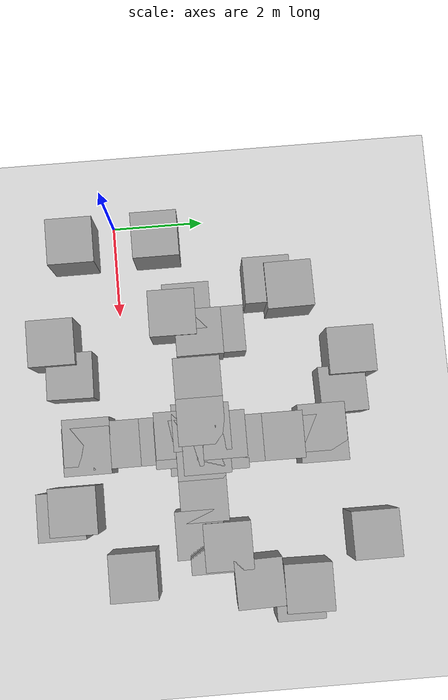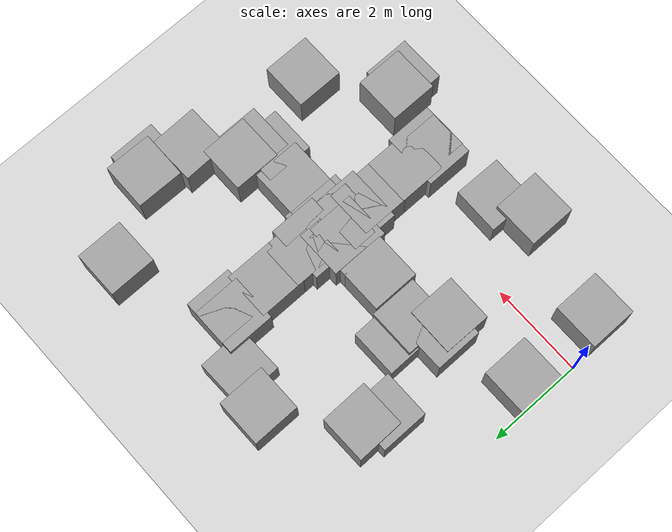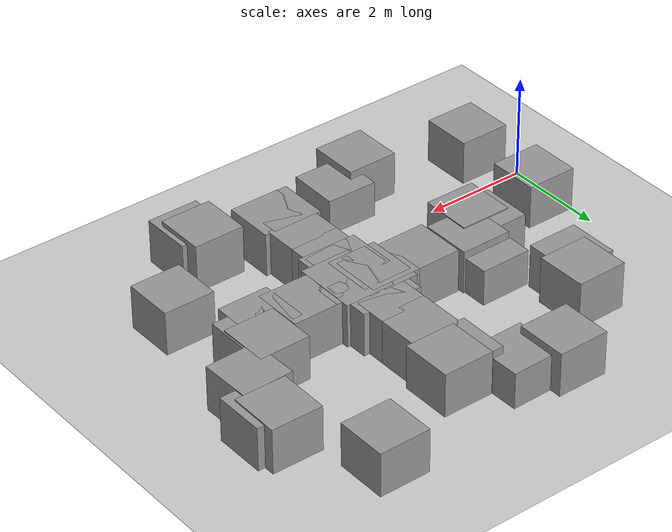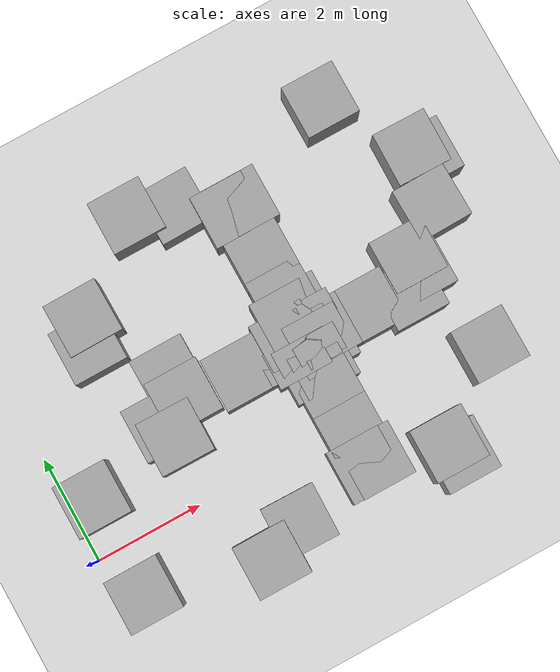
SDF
<sdf version='1.7'>
  <world name='default'>
    <light name='sun' type='directional'>
      <cast_shadows>1</cast_shadows>
      <pose>0 0 10 0 -0 0</pose>
      <diffuse>0.8 0.8 0.8 1</diffuse>
      <specular>0.2 0.2 0.2 1</specular>
      <attenuation>
        <range>1000</range>
        <constant>0.9</constant>
        <linear>0.01</linear>
        <quadratic>0.001</quadratic>
      </attenuation>
      <direction>-0.5 0.1 -0.9</direction>
      <spot>
        <inner_angle>0</inner_angle>
        <outer_angle>0</outer_angle>
        <falloff>0</falloff>
      </spot>
    </light>
    <model name='ground_plane'>
      <static>1</static>
      <link name='link'>
        <collision name='collision'>
          <geometry>
            <plane>
              <normal>0 0 1</normal>
              <size>100 100</size>
            </plane>
          </geometry>
          <surface>
            <contact>
              <collide_bitmask>65535</collide_bitmask>
              <ode/>
            </contact>
            <friction>
              <ode>
                <mu>100</mu>
                <mu2>50</mu2>
              </ode>
              <torsional>
                <ode/>
              </torsional>
            </friction>
            <bounce/>
          </surface>
          <max_contacts>10</max_contacts>
        </collision>
        <visual name='visual'>
          <cast_shadows>0</cast_shadows>
          <geometry>
            <plane>
              <normal>0 0 1</normal>
              <size>100 100</size>
            </plane>
          </geometry>
          <material>
            <script>
              <uri>file://media/materials/scripts/gazebo.material</uri>
              <name>Gazebo/Grey</name>
            </script>
          </material>
        </visual>
        <self_collide>0</self_collide>
        <enable_wind>0</enable_wind>
        <kinematic>0</kinematic>
      </link>
    </model>
    <gravity>0 0 -9.8</gravity>
    <magnetic_field>6e-06 2.3e-05 -4.2e-05</magnetic_field>
    <atmosphere type='adiabatic'/>
    <physics type='ode'>
      <max_step_size>0.001</max_step_size>
      <real_time_factor>1</real_time_factor>
      <real_time_update_rate>1000</real_time_update_rate>
    </physics>
    <scene>
      <ambient>0.4 0.4 0.4 1</ambient>
      <background>0.7 0.7 0.7 1</background>
      <shadows>1</shadows>
    </scene>
    <wind/>
    <spherical_coordinates>
      <surface_model>EARTH_WGS84</surface_model>
      <latitude_deg>0</latitude_deg>
      <longitude_deg>0</longitude_deg>
      <elevation>0</elevation>
      <heading_deg>0</heading_deg>
    </spherical_coordinates>
    <gui fullscreen='0'>
      <camera name='user_camera'>
        <pose>-2.70813 5.70495 19.0216 2e-06 1.5418 -1.5749</pose>
        <view_controller>orbit</view_controller>
        <projection_type>perspective</projection_type>
      </camera>
    </gui>
    <include>
      <uri>model://unit_box</uri>
      <name>sink</name>
      <pose>6.22500 -1.14500 0.44000 0 0 3.14159</pose>
      <scale>1.13 0.56 0.88</scale>
    </include>
<include>
      <uri>model://unit_box</uri>
      <name>sofa</name>
      <pose>2.63500 2.22250 0.20000 0 0 -3.13597</pose>
      <scale>1.78 0.86 0.40</scale>
    </include>
<include>
      <uri>model://unit_box</uri>
      <name>living_table</name>
      <pose>4.10750 4.71000 0.20000 0 0 0.01754</pose>
      <scale>1.14 0.81 0.40</scale>
    </include>
<include>
      <uri>model://unit_box</uri>
      <name>cabinet</name>
      <pose>8.16250 3.59500 0.37500 0 0 -1.58413</pose>
      <scale>0.75 0.28 0.75</scale>
    </include>
<include>
      <uri>model://unit_box</uri>
      <name>shelf</name>
      <pose>1.81250 3.73750 0.41000 0 0 1.58242</pose>
      <scale>0.86 0.36 0.82</scale>
    </include>
<include>
      <uri>model://unit_box</uri>
      <name>dining_table</name>
      <pose>7.99500 2.59000 0.37000 0 0 -1.54975</pose>
      <scale>0.95 0.51 0.74</scale>
    </include>
<include>
      <uri>model://unit_box</uri>
      <name>side_table</name>
      <pose>7.20000 2.00000 0.37000 0 0 0.00000</pose>
      <scale>1.00 0.60 0.74</scale>
    </include>
<include>
      <uri>model://unit_box</uri>
      <name>laundry_table</name>
      <pose>2.21500 1.20250 0.37000 0 0 -0.00909</pose>
      <scale>1.10 0.66 0.74</scale>
    </include>
<include>
      <uri>model://unit_box</uri>
      <name>washing_machine</name>
      <pose>3.37000 -1.08250 0.20000 0 0 3.12493</pose>
      <scale>0.60 0.58 0.40</scale>
    </include>
<include>
      <uri>model://unit_box</uri>
      <name>dining_wall_0_</name>
      <pose>5.12000 2.07476 0.35000 0 0 1.57080</pose>
      <scale>0.67 0.10 0.70</scale>
    </include>
<include>
      <uri>model://unit_box</uri>
      <name>dining_wall_1_</name>
      <pose>5.18481 1.70500 0.35000 0 0 0.00000</pose>
      <scale>0.21 0.10 0.70</scale>
    </include>
<include>
      <uri>model://unit_box</uri>
      <name>dining_wall_2_</name>
      <pose>8.30500 3.38500 0.35000 0 0 1.57080</pose>
      <scale>3.43 0.10 0.70</scale>
    </include>
<include>
      <uri>model://unit_box</uri>
      <name>dining_wall_4_</name>
      <pose>7.19502 5.09000 0.35000 0 0 0.00000</pose>
      <scale>2.25 0.10 0.70</scale>
    </include>
<include>
      <uri>model://unit_box</uri>
      <name>dining_wall_5_</name>
      <pose>5.12000 4.17524 0.35000 0 0 1.57080</pose>
      <scale>1.81 0.10 0.70</scale>
    </include>
<include>
      <uri>model://unit_box</uri>
      <name>dining_wall_6_</name>
      <pose>7.23019 1.70500 0.35000 0 0 0.00000</pose>
      <scale>2.12 0.10 0.70</scale>
    </include>
<include>
      <uri>model://unit_box</uri>
      <name>living_wall_0_</name>
      <pose>4.89000 2.05963 0.35000 0 0 1.57080</pose>
      <scale>0.70 0.10 0.70</scale>
    </include>
<include>
      <uri>model://unit_box</uri>
      <name>living_wall_1_</name>
      <pose>2.66986 1.74000 0.35000 0 0 0.00000</pose>
      <scale>2.06 0.10 0.70</scale>
    </include>
<include>
      <uri>model://unit_box</uri>
      <name>living_wall_2_</name>
      <pose>1.65500 3.28500 0.35000 0 0 1.57080</pose>
      <scale>3.03 0.10 0.70</scale>
    </include>
<include>
      <uri>model://unit_box</uri>
      <name>living_wall_3_</name>
      <pose>3.30500 4.93500 0.35000 0 0 0.00000</pose>
      <scale>3.28 0.10 0.70</scale>
    </include>
<include>
      <uri>model://unit_box</uri>
      <name>living_wall_4_</name>
      <pose>4.89000 4.17037 0.35000 0 0 1.57080</pose>
      <scale>1.80 0.10 0.70</scale>
    </include>
<include>
      <uri>model://unit_box</uri>
      <name>living_wall_5_</name>
      <pose>4.70514 1.74000 0.35000 0 0 0.00000</pose>
      <scale>0.27 0.10 0.70</scale>
    </include>
<include>
      <uri>model://unit_box</uri>
      <name>kitchen_wall_0_</name>
      <pose>5.00500 -0.79052 0.35000 0 0 1.57080</pose>
      <scale>1.24 0.10 0.70</scale>
    </include>
<include>
      <uri>model://unit_box</uri>
      <name>kitchen_wall_1_</name>
      <pose>6.32000 -1.41000 0.35000 0 0 0.00000</pose>
      <scale>2.74 0.10 0.70</scale>
    </include>
<include>
      <uri>model://unit_box</uri>
      <name>kitchen_wall_2_</name>
      <pose>7.67000 -0.01000 0.35000 0 0 1.57080</pose>
      <scale>2.80 0.10 0.70</scale>
    </include>
<include>
      <uri>model://unit_box</uri>
      <name>kitchen_wall_3_</name>
      <pose>5.17461 1.43500 0.35000 0 0 0.00000</pose>
      <scale>0.23 0.10 0.70</scale>
    </include>
<include>
      <uri>model://unit_box</uri>
      <name>kitchen_wall_4_</name>
      <pose>6.91039 1.43500 0.35000 0 0 0.00000</pose>
      <scale>1.48 0.10 0.70</scale>
    </include>
<include>
      <uri>model://unit_box</uri>
      <name>kitchen_wall_5_</name>
      <pose>5.00500 1.13552 0.35000 0 0 1.57080</pose>
      <scale>0.69 0.10 0.70</scale>
    </include>
<include>
      <uri>model://unit_box</uri>
      <name>laundry_room_wall_0_</name>
      <pose>4.81500 -0.78021 0.35000 0 0 1.57080</pose>
      <scale>1.22 0.10 0.70</scale>
    </include>
<include>
      <uri>model://unit_box</uri>
      <name>laundry_room_wall_1_</name>
      <pose>2.65000 -1.41000 0.35000 0 0 0.00000</pose>
      <scale>4.40 0.10 0.70</scale>
    </include>
<include>
      <uri>model://unit_box</uri>
      <name>laundry_room_wall_2_</name>
      <pose>0.47500 -0.87010 0.35000 0 0 1.57080</pose>
      <scale>1.12 0.10 0.70</scale>
    </include>
<include>
      <uri>model://unit_box</uri>
      <name>laundry_room_wall_3_</name>
      <pose>2.09993 1.52500 0.35000 0 0 0.00000</pose>
      <scale>3.20 0.10 0.70</scale>
    </include>
<include>
      <uri>model://unit_box</uri>
      <name>laundry_room_wall_4_</name>
      <pose>4.81500 1.14521 0.35000 0 0 1.57080</pose>
      <scale>0.71 0.10 0.70</scale>
    </include>
<include>
      <uri>model://unit_box</uri>
      <name>laundry_room_wall_5_</name>
      <pose>4.67507 1.52500 0.35000 0 0 0.00000</pose>
      <scale>0.21 0.10 0.70</scale>
    </include>
<include>
      <uri>model://unit_box</uri>
      <name>laundry_room_wall_6_</name>
      <pose>0.47500 0.96010 0.35000 0 0 1.57080</pose>
      <scale>1.18 0.10 0.70</scale>
    </include>
<include>
      <uri>model://unit_box</uri>
      <name>inter_room_wall_0_</name>
      <pose>5.00500 2.41000 0.35000 0 0 3.14159</pose>
      <scale>0.23 0.10 0.70</scale>
    </include>
<include>
      <uri>model://unit_box</uri>
      <name>inter_room_wall_1_</name>
      <pose>5.00500 3.27000 0.35000 0 0 3.14159</pose>
      <scale>0.23 0.10 0.70</scale>
    </include>
<include>
      <uri>model://unit_box</uri>
      <name>inter_room_wall_2_</name>
      <pose>5.29000 1.57000 0.35000 0 0 -1.57080</pose>
      <scale>0.27 0.10 0.70</scale>
    </include>
<include>
      <uri>model://unit_box</uri>
      <name>inter_room_wall_3_</name>
      <pose>6.17000 1.57000 0.35000 0 0 -1.57080</pose>
      <scale>0.27 0.10 0.70</scale>
    </include>
<include>
      <uri>model://unit_box</uri>
      <name>inter_room_wall_4_</name>
      <pose>3.70000 1.63250 0.35000 0 0 -1.57080</pose>
      <scale>0.22 0.10 0.70</scale>
    </include>
<include>
      <uri>model://unit_box</uri>
      <name>inter_room_wall_5_</name>
      <pose>4.57000 1.63250 0.35000 0 0 -1.57080</pose>
      <scale>0.22 0.10 0.70</scale>
    </include>
<include>
      <uri>model://unit_box</uri>
      <name>inter_room_wall_6_</name>
      <pose>4.91000 -0.17000 0.35000 0 0 3.14159</pose>
      <scale>0.19 0.10 0.70</scale>
    </include>
<include>
      <uri>model://unit_box</uri>
      <name>inter_room_wall_7_</name>
      <pose>4.91000 0.79000 0.35000 0 0 3.14159</pose>
      <scale>0.19 0.10 0.70</scale>
    </include>
  </world>
</sdf>

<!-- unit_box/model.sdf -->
<sdf version='1.7'>
  <model name='unit_box'>
    <link name='link'>
      <inertial>
        <mass>1</mass>
        <inertia>
          <ixx>0.166667</ixx>
          <ixy>0</ixy>
          <ixz>0</ixz>
          <iyy>0.166667</iyy>
          <iyz>0</iyz>
          <izz>0.166667</izz>
        </inertia>
        <pose>0 0 0 0 -0 0</pose>
      </inertial>
      <self_collide>0</self_collide>
      <enable_wind>0</enable_wind>
      <pose>0 0 0 0 -0 0</pose>
      <gravity>1</gravity>
      <kinematic>0</kinematic>
      <visual name='visual'>
        <geometry>
          <box>
            <size>1 1 1</size>
          </box>
        </geometry>
        <material>
          <script>
            <name>Gazebo/Grey</name>
            <uri>file://media/materials/scripts/gazebo.material</uri>
          </script>
          <shader type='pixel'>
            <normal_map>__default__</normal_map>
          </shader>
          <ambient>0.8 0.8 0.8 1</ambient>
          <diffuse>0.7 0.7 0.7 1</diffuse>
          <specular>0.01 0.01 0.01 1</specular>
          <emissive>0 0 0 1</emissive>
        </material>
        <pose>0 0 0 0 -0 0</pose>
        <transparency>0</transparency>
        <cast_shadows>1</cast_shadows>
      </visual>
      <collision name='collision'>
        <laser_retro>0</laser_retro>
        <max_contacts>10</max_contacts>
        <pose>0 0 0 0 -0 0</pose>
        <geometry>
          <box>
            <size>1 1 1</size>
          </box>
        </geometry>
        <surface>
          <friction>
            <ode>
              <mu>1</mu>
              <mu2>1</mu2>
              <fdir1>0 0 0</fdir1>
              <slip1>0</slip1>
              <slip2>0</slip2>
            </ode>
            <torsional>
              <coefficient>1</coefficient>
              <patch_radius>0</patch_radius>
              <surface_radius>0</surface_radius>
              <use_patch_radius>1</use_patch_radius>
              <ode>
                <slip>0</slip>
              </ode>
            </torsional>
          </friction>
          <bounce>
            <restitution_coefficient>0</restitution_coefficient>
            <threshold>1e+06</threshold>
          </bounce>
          <contact>
            <collide_without_contact>0</collide_without_contact>
            <collide_without_contact_bitmask>1</collide_without_contact_bitmask>
            <collide_bitmask>1</collide_bitmask>
            <ode>
              <soft_cfm>0</soft_cfm>
              <soft_erp>0.2</soft_erp>
              <kp>1e+13</kp>
              <kd>1</kd>
              <max_vel>0.01</max_vel>
              <min_depth>0</min_depth>
            </ode>
            <bullet>
              <split_impulse>1</split_impulse>
              <split_impulse_penetration_threshold>-0.01</split_impulse_penetration_threshold>
              <soft_cfm>0</soft_cfm>
              <soft_erp>0.2</soft_erp>
              <kp>1e+13</kp>
              <kd>1</kd>
            </bullet>
          </contact>
        </surface>
      </collision>
    </link>
    <static>0</static>
    <allow_auto_disable>1</allow_auto_disable>
  </model>
</sdf>
